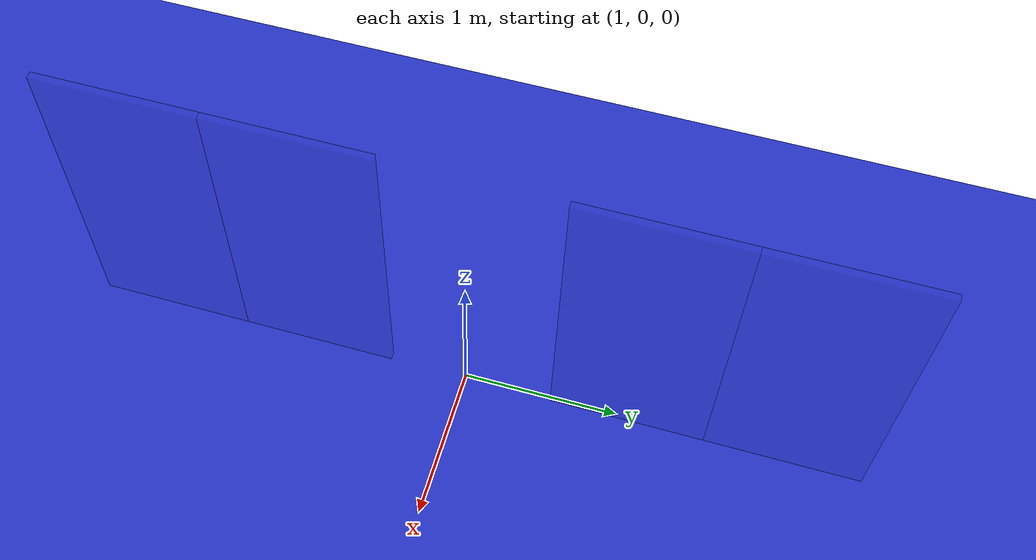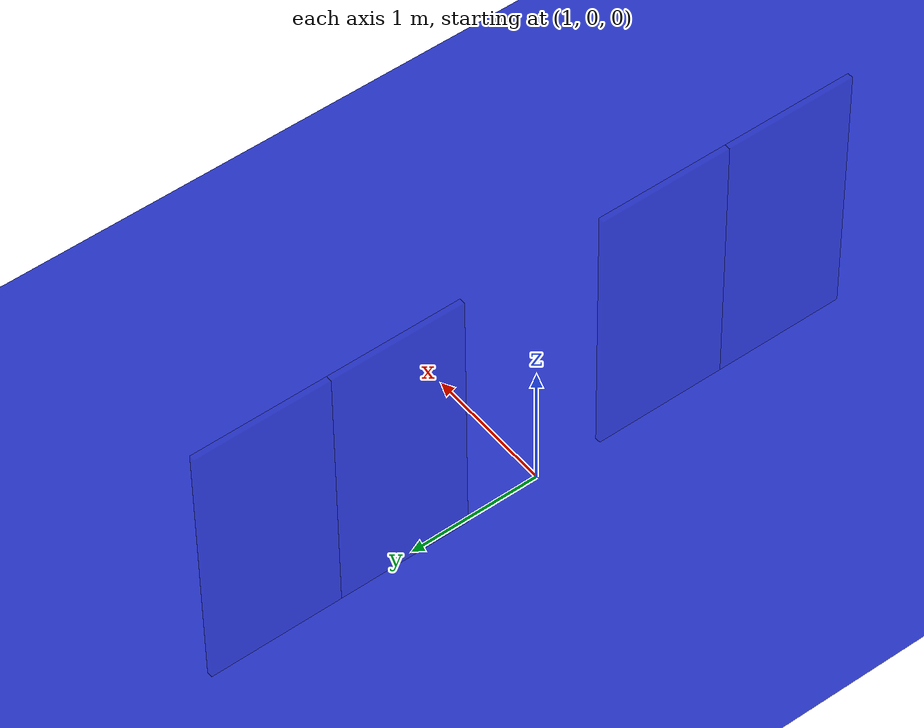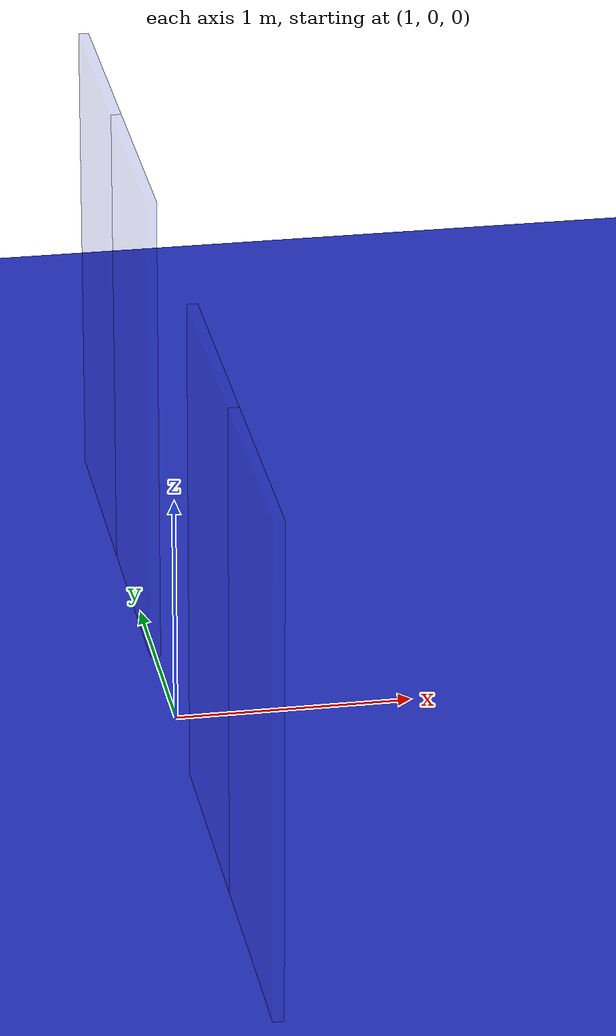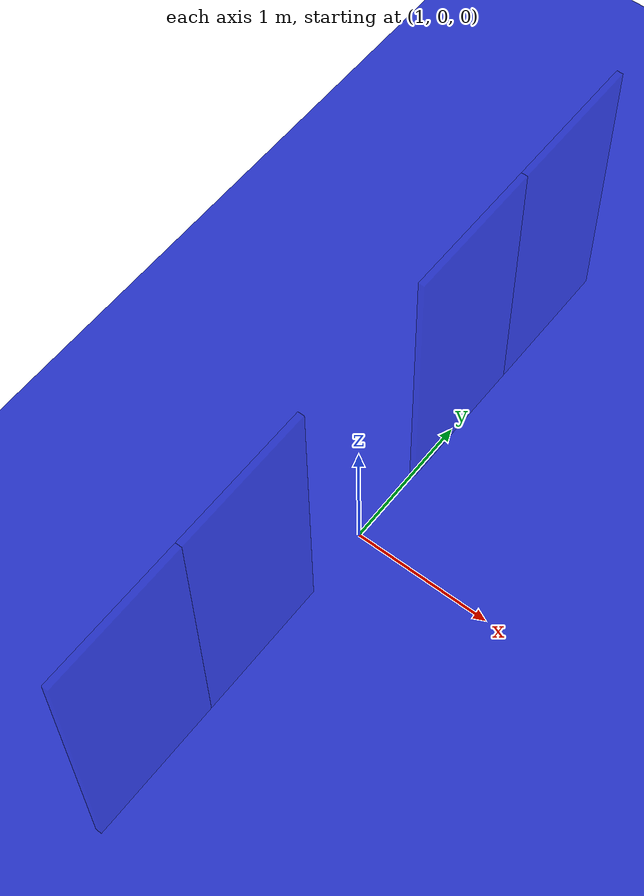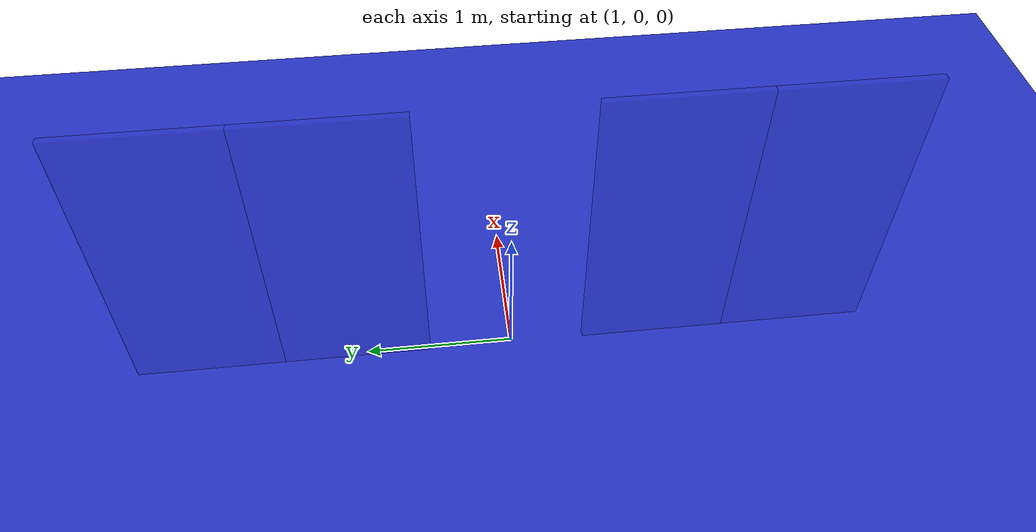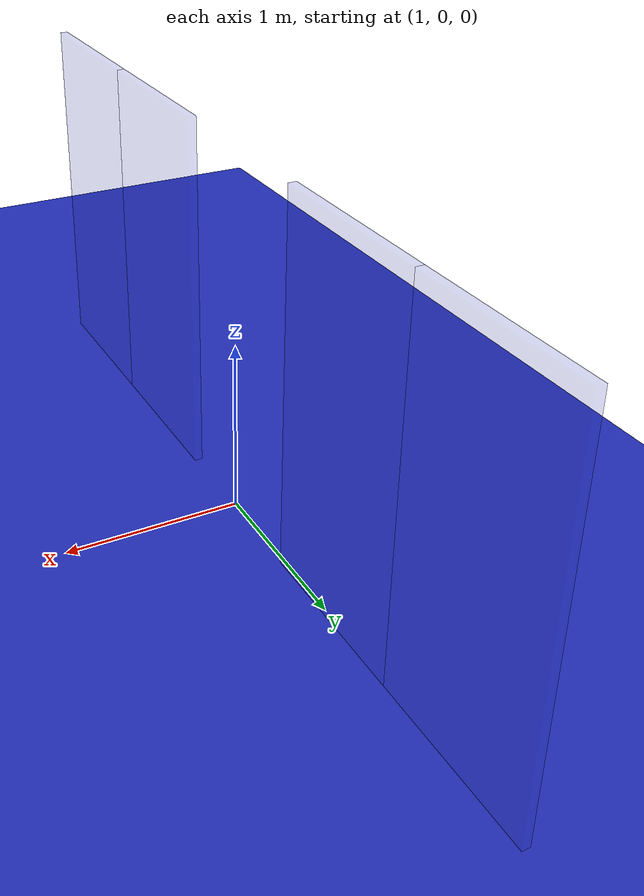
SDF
<sdf version="1.7">
 <world name="default">
  <plugin name="link_state_publisher" filename="liblink_state_publisher.so"/>
  <light name="sun" type="directional">
   <pose>0 0 10 0 -0 0</pose>
   <diffuse>0.8 0.8 0.8 1</diffuse>
   <specular>0.2 0.2 0.2 1</specular>
   <attenuation>
    <range>1000</range>
    <constant>0.9</constant>
    <linear>0.01</linear>
    <quadratic>0.001</quadratic>
   </attenuation>
   <direction>-0.5 0.1 -0.9</direction>
   <spot><inner_angle>0</inner_angle><outer_angle>0</outer_angle><falloff>0</falloff></spot>
  </light>
  <include><uri>model://blue_ground_plane</uri></include>
  <gravity>0 0 -9.8</gravity>
  <magnetic_field>6e-06 2.3e-05 -4.2e-05</magnetic_field>
  <atmosphere type="adiabatic"/>
  <physics type="ode">
   <max_step_size>0.002</max_step_size>
   <real_time_factor>1</real_time_factor>
   <real_time_update_rate>500</real_time_update_rate>
  </physics>
  <scene><ambient>0.4 0.4 0.4 1</ambient><background>0.7 0.7 0.7 1</background><shadows>1</shadows></scene>
  <spherical_coordinates>
   <surface_model>EARTH_WGS84</surface_model>
   <latitude_deg>0</latitude_deg>
   <longitude_deg>0</longitude_deg>
   <elevation>0</elevation>
   <heading_deg>0</heading_deg>
  </spherical_coordinates>
  <include>
   <name>wall1</name>
   <uri>model://glass_wall_segment</uri>
   <pose>1.0 1.07 0.0 0.0 0.0 0.0</pose>
  </include>
  <include>
   <name>wall2</name>
   <uri>model://glass_wall_segment</uri>
   <pose>1.0 -1.0 0.0 0.0 0.0 0.0</pose>
  </include>
  <include>
   <name>wall3</name>
   <uri>model://glass_wall_segment</uri>
   <pose>1.0 -2.0 0.0 0.0 0.0 0.0</pose>
  </include>
  <include>
   <name>wall4</name>
   <uri>model://glass_wall_segment</uri>
   <pose>1.0 2.07 0.0 0.0 0.0 0.0</pose>
  </include>
 </world>
</sdf>

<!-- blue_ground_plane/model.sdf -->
<sdf version="1.5">
  <model name="blue_ground_plane">
    <static>true</static>
    <link name="link">
      <collision name="collision">
        <geometry>
          <plane>
            <normal>0 0 1</normal>
            <size>100 100</size>
          </plane>
        </geometry>
        <surface>
          <friction>
            <ode>
              <mu>100</mu>
              <mu2>50</mu2>
            </ode>
          </friction>
        </surface>
      </collision>
      <visual name="visual">
        <cast_shadows>false</cast_shadows>
        <geometry>
          <plane>
            <normal>0 0 1</normal>
            <size>100 100</size>
          </plane>
        </geometry>
        <material>
          <ambient>0.15 0.2 0.78 1</ambient>
          <diffuse>0.15 0.2 0.78 1</diffuse>
          <specular>0.15 0.2 0.78 1</specular>
        </material>
      </visual>
    </link>
  </model>
</sdf>

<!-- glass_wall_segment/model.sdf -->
<sdf version="1.5">
  <model name="glass_wall_segment">
    <static>true</static>
    <link name="wall">
      <pose>-0.0 0.0 1.05 0 0 1.5709</pose>
      <collision name="collision">
        <geometry>
          <box>
            <size>1.0 0.04445 2.1</size>
          </box>
        </geometry>
      </collision>
      <visual name="visual">
        <material>
          <ambient>0.15 0.2 0.78 0.2</ambient>
          <diffuse>0.15 0.2 0.78 0.2</diffuse>
          <specular>0.15 0.2 0.78 0.2</specular>
        </material>
        <geometry>
          <box>
            <size>1.0 0.04445 2.1</size>
          </box>
        </geometry>
      </visual>
    </link>
  </model>
</sdf>
